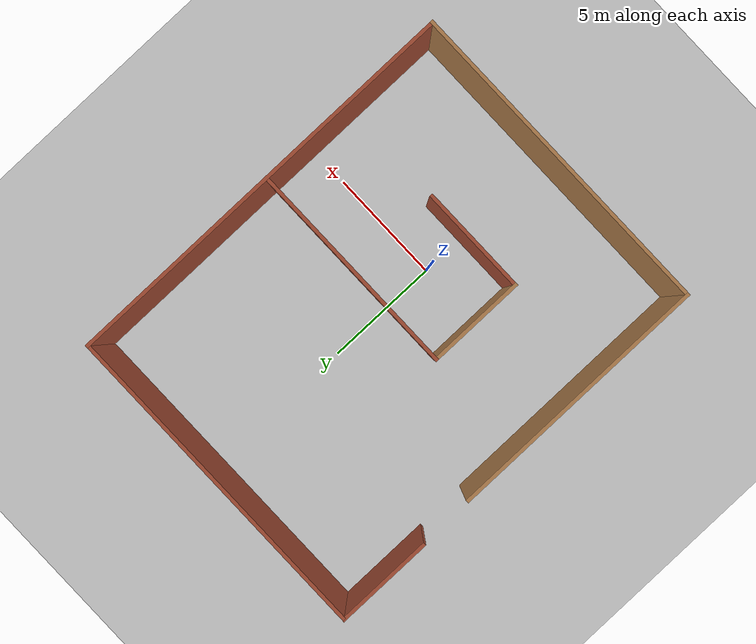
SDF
<sdf version="1.7">
 <world name="default">
  <light name="sun" type="directional">
   <pose>0 0 10 0 -0 0</pose>
   <diffuse>0.8 0.8 0.8 1</diffuse>
   <specular>0.2 0.2 0.2 1</specular>
   <attenuation>
    <range>1000</range>
    <constant>0.9</constant>
    <linear>0.01</linear>
    <quadratic>0.001</quadratic>
   </attenuation>
   <direction>-0.5 0.1 -0.9</direction>
   <spot><inner_angle>0</inner_angle><outer_angle>0</outer_angle><falloff>0</falloff></spot>
  </light>
  <model name="ground_plane">
   <static>1</static>
   <link name="link">
    <collision name="collision">
     <geometry><plane><normal>0 0 1</normal><size>100 100</size></plane></geometry>
     <surface>
      <contact><collide_bitmask>65535</collide_bitmask></contact>
      <friction><ode><mu>100</mu><mu2>50</mu2></ode></friction>
     </surface>
    </collision>
    <visual name="visual">
     <cast_shadows>0</cast_shadows>
     <geometry><plane><normal>0 0 1</normal><size>100 100</size></plane></geometry>
     <material>
      <script><uri>file://media/materials/scripts/gazebo.material</uri><name>Gazebo/Grey</name></script>
     </material>
    </visual>
   </link>
  </model>
  <gravity>0 0 -9.8</gravity>
  <magnetic_field>6e-06 2.3e-05 -4.2e-05</magnetic_field>
  <atmosphere type="adiabatic"/>
  <physics type="ode">
   <max_step_size>0.001</max_step_size>
   <real_time_factor>1</real_time_factor>
   <real_time_update_rate>1000</real_time_update_rate>
  </physics>
  <scene><ambient>0.4 0.4 0.4 1</ambient><background>0.7 0.7 0.7 1</background><shadows>1</shadows></scene>
  <audio><device>default</device></audio>
  <spherical_coordinates>
   <surface_model>EARTH_WGS84</surface_model>
   <latitude_deg>0</latitude_deg>
   <longitude_deg>0</longitude_deg>
   <elevation>0</elevation>
   <heading_deg>0</heading_deg>
  </spherical_coordinates>
  <model name="myHouseEnv">
   <pose>-0.436904 2.55441 0 0 -0 0</pose>
   <link name="Wall_0">
    <collision name="Wall_0_Collision">
     <geometry><box><size>11.5 0.15 2.5</size></box></geometry>
     <pose>0 0 1.25 0 -0 0</pose>
    </collision>
    <visual name="Wall_0_Visual">
     <pose>0 0 1.25 0 -0 0</pose>
     <geometry><box><size>11.5 0.15 2.5</size></box></geometry>
     <material>
      <script><uri>file://media/materials/scripts/gazebo.material</uri><name>Gazebo/Wood</name></script>
      <ambient>1 1 1 1</ambient>
     </material>
     <meta><layer>0</layer></meta>
    </visual>
    <pose>-7.01535 -3.25 0 0 -0 -1.5708</pose>
   </link>
   <link name="Wall_1">
    <collision name="Wall_1_Collision">
     <geometry><box><size>14.25 0.15 2.5</size></box></geometry>
     <pose>0 0 1.25 0 -0 0</pose>
    </collision>
    <visual name="Wall_1_Visual">
     <pose>0 0 1.25 0 -0 0</pose>
     <geometry><box><size>14.25 0.15 2.5</size></box></geometry>
     <material>
      <script><uri>file://media/materials/scripts/gazebo.material</uri><name>Gazebo/Wood</name></script>
      <ambient>1 1 1 1</ambient>
     </material>
     <meta><layer>0</layer></meta>
    </visual>
    <pose>0.034652 -8.925 0 0 -0 0</pose>
   </link>
   <link name="Wall_2">
    <collision name="Wall_2_Collision">
     <geometry><box><size>18 0.15 2.5</size></box></geometry>
     <pose>0 0 1.25 0 -0 0</pose>
    </collision>
    <visual name="Wall_2_Visual">
     <pose>0 0 1.25 0 -0 0</pose>
     <geometry><box><size>18 0.15 2.5</size></box></geometry>
     <material>
      <script><uri>file://media/materials/scripts/gazebo.material</uri><name>Gazebo/Bricks</name></script>
      <ambient>1 1 1 1</ambient>
     </material>
     <meta><layer>0</layer></meta>
    </visual>
    <pose>7.08465 -0 0 0 -0 1.5708</pose>
   </link>
   <link name="Wall_3">
    <collision name="Wall_3_Collision">
     <geometry><box><size>14.2578 0.15 2.5</size></box></geometry>
     <pose>0 0 1.25 0 -0 0</pose>
    </collision>
    <visual name="Wall_3_Visual">
     <pose>0 0 1.25 0 -0 0</pose>
     <geometry><box><size>14.2578 0.15 2.5</size></box></geometry>
     <material>
      <script><uri>file://media/materials/scripts/gazebo.material</uri><name>Gazebo/Bricks</name></script>
      <ambient>1 1 1 1</ambient>
     </material>
     <meta><layer>0</layer></meta>
    </visual>
    <pose>0.030764 8.925 0 0 -0 3.14159</pose>
   </link>
   <link name="Wall_4">
    <collision name="Wall_4_Collision">
     <geometry><box><size>4.25 0.15 2.5</size></box></geometry>
     <pose>0 0 1.25 0 -0 0</pose>
    </collision>
    <visual name="Wall_4_Visual">
     <pose>0 0 1.25 0 -0 0</pose>
     <geometry><box><size>4.25 0.15 2.5</size></box></geometry>
     <material>
      <script><uri>file://media/materials/scripts/gazebo.material</uri><name>Gazebo/Bricks</name></script>
      <ambient>1 1 1 1</ambient>
     </material>
     <meta><layer>0</layer></meta>
    </visual>
    <pose>-7.08465 6.875 0 0 -0 -1.5708</pose>
   </link>
   <link name="Wall_6">
    <collision name="Wall_6_Collision">
     <geometry><box><size>9.5 0.15 2.5</size></box></geometry>
     <pose>0 0 1.25 0 -0 0</pose>
    </collision>
    <visual name="Wall_6_Visual">
     <pose>0 0 1.25 0 -0 0</pose>
     <geometry><box><size>9.5 0.15 2.5</size></box></geometry>
     <material>
      <script><uri>file://media/materials/scripts/gazebo.material</uri><name>Gazebo/Bricks</name></script>
      <ambient>0.435294 0.796078 0.67451 1</ambient>
     </material>
     <meta><layer>0</layer></meta>
    </visual>
    <pose>2.37712 -0.32847 0 0 -0 3.14159</pose>
   </link>
   <link name="Wall_7">
    <collision name="Wall_7_Collision">
     <geometry><box><size>4.25 0.15 2.5</size></box></geometry>
     <pose>0 0 1.25 0 -0 0</pose>
    </collision>
    <visual name="Wall_7_Visual">
     <pose>0 0 1.25 0 -0 0</pose>
     <geometry><box><size>4.25 0.15 2.5</size></box></geometry>
     <material>
      <script><uri>file://media/materials/scripts/gazebo.material</uri><name>Gazebo/Wood</name></script>
      <ambient>0.435294 0.796078 0.67451 1</ambient>
     </material>
     <meta><layer>0</layer></meta>
    </visual>
    <pose>-2.29788 -2.37847 0 0 -0 -1.5708</pose>
   </link>
   <link name="Wall_8">
    <collision name="Wall_8_Collision">
     <geometry><box><size>4.75 0.15 2.5</size></box></geometry>
     <pose>0 0 1.25 0 -0 0</pose>
    </collision>
    <visual name="Wall_8_Visual">
     <pose>0 0 1.25 0 -0 0</pose>
     <geometry><box><size>4.75 0.15 2.5</size></box></geometry>
     <material>
      <script><uri>file://media/materials/scripts/gazebo.material</uri><name>Gazebo/Bricks</name></script>
      <ambient>1 1 1 1</ambient>
     </material>
     <meta><layer>0</layer></meta>
    </visual>
    <pose>0.002124 -4.42847 0 0 -0 0</pose>
   </link>
   <static>1</static>
  </model>
 </world>
</sdf>
